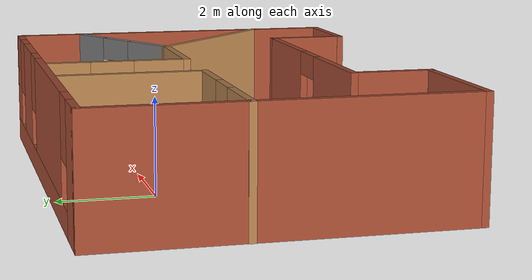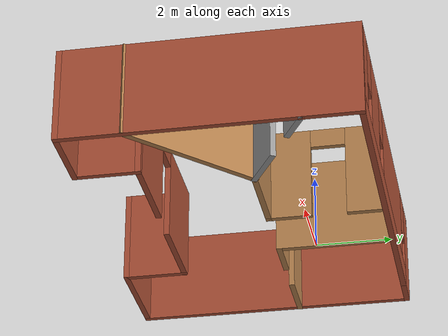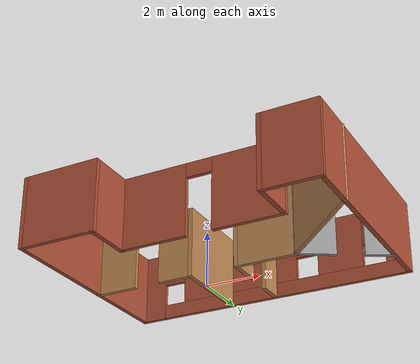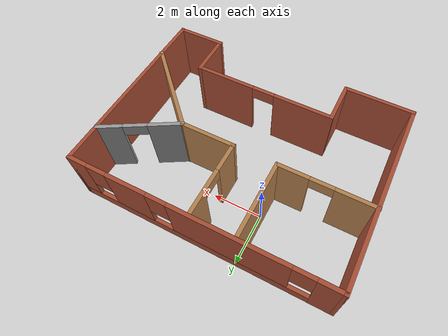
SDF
<?xml version='1.0'?>
<sdf version='1.7'>
  <model name='Building'>
    <pose>1.40233 -1.662 0 0 -0 0</pose>
    <link name='Wall_10'>
      <collision name='Wall_10_Collision'>
        <geometry>
          <box>
            <size>2.8 0.15 2.5</size>
          </box>
        </geometry>
        <pose>0 0 1.25 0 -0 0</pose>
      </collision>
      <visual name='Wall_10_Visual'>
        <pose>0 0 1.25 0 -0 0</pose>
        <geometry>
          <box>
            <size>2.8 0.15 2.5</size>
          </box>
        </geometry>
        <material>
          <script>
            <uri>file://media/materials/scripts/gazebo.material</uri>
            <name>Gazebo/Bricks</name>
          </script>
          <ambient>1 1 1 1</ambient>
        </material>
        <meta>
          <layer>0</layer>
        </meta>
      </visual>
      <pose>-3.73879 -3.675 0 0 -0 3.14159</pose>
    </link>
    <link name='Wall_12'>
      <pose>-3.27646 0.671731 0 0 -0 0</pose>
      <visual name='Wall_12_Visual_0'>
        <pose>-1.0918 0 1.25 0 -0 0</pose>
        <geometry>
          <box>
            <size>1.5664 0.15 2.5</size>
          </box>
        </geometry>
        <material>
          <script>
            <uri>file://media/materials/scripts/gazebo.material</uri>
            <name>Gazebo/Wood</name>
          </script>
          <ambient>1 1 1 1</ambient>
        </material>
        <meta>
          <layer>0</layer>
        </meta>
      </visual>
      <collision name='Wall_12_Collision_0'>
        <geometry>
          <box>
            <size>1.5664 0.15 2.5</size>
          </box>
        </geometry>
        <pose>-1.0918 0 1.25 0 -0 0</pose>
      </collision>
      <visual name='Wall_12_Visual_1'>
        <pose>1.2332 0 1.25 0 -0 0</pose>
        <geometry>
          <box>
            <size>1.2836 0.15 2.5</size>
          </box>
        </geometry>
        <material>
          <script>
            <uri>file://media/materials/scripts/gazebo.material</uri>
            <name>Gazebo/Wood</name>
          </script>
          <ambient>1 1 1 1</ambient>
        </material>
        <meta>
          <layer>0</layer>
        </meta>
      </visual>
      <collision name='Wall_12_Collision_1'>
        <geometry>
          <box>
            <size>1.2836 0.15 2.5</size>
          </box>
        </geometry>
        <pose>1.2332 0 1.25 0 -0 0</pose>
      </collision>
      <visual name='Wall_12_Visual_2'>
        <pose>0.141397 0 2.25 0 -0 0</pose>
        <geometry>
          <box>
            <size>0.9 0.15 0.5</size>
          </box>
        </geometry>
        <material>
          <script>
            <uri>file://media/materials/scripts/gazebo.material</uri>
            <name>Gazebo/Wood</name>
          </script>
          <ambient>1 1 1 1</ambient>
        </material>
        <meta>
          <layer>0</layer>
        </meta>
      </visual>
      <collision name='Wall_12_Collision_2'>
        <geometry>
          <box>
            <size>0.9 0.15 0.5</size>
          </box>
        </geometry>
        <pose>0.141397 0 2.25 0 -0 0</pose>
      </collision>
    </link>
    <link name='Wall_13'>
      <collision name='Wall_13_Collision'>
        <geometry>
          <box>
            <size>3 0.15 2.5</size>
          </box>
        </geometry>
        <pose>0 0 1.25 0 -0 0</pose>
      </collision>
      <visual name='Wall_13_Visual'>
        <pose>0 0 1.25 0 -0 0</pose>
        <geometry>
          <box>
            <size>3 0.15 2.5</size>
          </box>
        </geometry>
        <material>
          <script>
            <uri>file://media/materials/scripts/gazebo.material</uri>
            <name>Gazebo/Wood</name>
          </script>
          <ambient>1 1 1 1</ambient>
        </material>
        <meta>
          <layer>0</layer>
        </meta>
      </visual>
      <pose>-1.47646 2.09673 0 0 -0 1.5708</pose>
    </link>
    <link name='Wall_15'>
      <pose>0.223031 2.09673 0 0 -0 1.5708</pose>
      <visual name='Wall_15_Visual_0'>
        <pose>-0.900447 0 1.25 0 -0 0</pose>
        <geometry>
          <box>
            <size>1.19911 0.15 2.5</size>
          </box>
        </geometry>
        <material>
          <script>
            <uri>file://media/materials/scripts/gazebo.material</uri>
            <name>Gazebo/Wood</name>
          </script>
          <ambient>1 1 1 1</ambient>
        </material>
        <meta>
          <layer>0</layer>
        </meta>
      </visual>
      <collision name='Wall_15_Collision_0'>
        <geometry>
          <box>
            <size>1.19911 0.15 2.5</size>
          </box>
        </geometry>
        <pose>-0.900447 0 1.25 0 -0 0</pose>
      </collision>
      <visual name='Wall_15_Visual_1'>
        <pose>1.04955 0 1.25 0 -0 0</pose>
        <geometry>
          <box>
            <size>0.900894 0.15 2.5</size>
          </box>
        </geometry>
        <material>
          <script>
            <uri>file://media/materials/scripts/gazebo.material</uri>
            <name>Gazebo/Wood</name>
          </script>
          <ambient>1 1 1 1</ambient>
        </material>
        <meta>
          <layer>0</layer>
        </meta>
      </visual>
      <collision name='Wall_15_Collision_1'>
        <geometry>
          <box>
            <size>0.900894 0.15 2.5</size>
          </box>
        </geometry>
        <pose>1.04955 0 1.25 0 -0 0</pose>
      </collision>
      <visual name='Wall_15_Visual_2'>
        <pose>0.149106 0 2.25 0 -0 0</pose>
        <geometry>
          <box>
            <size>0.9 0.15 0.5</size>
          </box>
        </geometry>
        <material>
          <script>
            <uri>file://media/materials/scripts/gazebo.material</uri>
            <name>Gazebo/Wood</name>
          </script>
          <ambient>1 1 1 1</ambient>
        </material>
        <meta>
          <layer>0</layer>
        </meta>
      </visual>
      <collision name='Wall_15_Collision_2'>
        <geometry>
          <box>
            <size>0.9 0.15 0.5</size>
          </box>
        </geometry>
        <pose>0.149106 0 2.25 0 -0 0</pose>
      </collision>
    </link>
    <link name='Wall_17'>
      <collision name='Wall_17_Collision'>
        <geometry>
          <box>
            <size>2.25 0.15 2.5</size>
          </box>
        </geometry>
        <pose>0 0 1.25 0 -0 0</pose>
      </collision>
      <visual name='Wall_17_Visual'>
        <pose>0 0 1.25 0 -0 0</pose>
        <geometry>
          <box>
            <size>2.25 0.15 2.5</size>
          </box>
        </geometry>
        <material>
          <script>
            <uri>file://media/materials/scripts/gazebo.material</uri>
            <name>Gazebo/Wood</name>
          </script>
          <ambient>1 1 1 1</ambient>
        </material>
        <meta>
          <layer>0</layer>
        </meta>
      </visual>
      <pose>1.27303 0.671731 0 0 -0 0</pose>
    </link>
    <link name='Wall_18'>
      <collision name='Wall_18_Collision'>
        <geometry>
          <box>
            <size>4 0.15 2.5</size>
          </box>
        </geometry>
        <pose>0 0 1.25 0 -0 0</pose>
      </collision>
      <visual name='Wall_18_Visual'>
        <pose>0 0 1.25 0 -0 0</pose>
        <geometry>
          <box>
            <size>4 0.15 2.5</size>
          </box>
        </geometry>
        <material>
          <script>
            <uri>file://media/materials/scripts/gazebo.material</uri>
            <name>Gazebo/Wood</name>
          </script>
          <ambient>1 1 1 1</ambient>
        </material>
        <meta>
          <layer>0</layer>
        </meta>
      </visual>
      <pose>3.68421 -0.689449 0 0 -0 -0.785398</pose>
    </link>
    <link name='Wall_2'>
      <collision name='Wall_2_Collision'>
        <geometry>
          <box>
            <size>7.5 0.15 2.5</size>
          </box>
        </geometry>
        <pose>0 0 1.25 0 -0 0</pose>
      </collision>
      <visual name='Wall_2_Visual'>
        <pose>0 0 1.25 0 -0 0</pose>
        <geometry>
          <box>
            <size>7.5 0.15 2.5</size>
          </box>
        </geometry>
        <material>
          <script>
            <uri>file://media/materials/scripts/gazebo.material</uri>
            <name>Gazebo/Bricks</name>
          </script>
          <ambient>1 1 1 1</ambient>
        </material>
        <meta>
          <layer>0</layer>
        </meta>
      </visual>
      <pose>-5.06379 0 0 0 -0 1.5708</pose>
    </link>
    <link name='Wall_21'>
      <pose>3.66537 1.44673 0 0 -0 0.523599</pose>
      <visual name='Wall_21_Visual_0'>
        <pose>-0.947449 0 1.25 0 -0 0</pose>
        <geometry>
          <box>
            <size>1.3551 0.15 2.5</size>
          </box>
        </geometry>
        <material>
          <script>
            <uri>file://media/materials/scripts/gazebo.material</uri>
            <name>Gazebo/Grey</name>
          </script>
          <ambient>1 1 1 1</ambient>
        </material>
        <meta>
          <layer>0</layer>
        </meta>
      </visual>
      <collision name='Wall_21_Collision_0'>
        <geometry>
          <box>
            <size>1.3551 0.15 2.5</size>
          </box>
        </geometry>
        <pose>-0.947449 0 1.25 0 -0 0</pose>
      </collision>
      <visual name='Wall_21_Visual_1'>
        <pose>1.12755 0 1.25 0 -0 0</pose>
        <geometry>
          <box>
            <size>0.994898 0.15 2.5</size>
          </box>
        </geometry>
        <material>
          <script>
            <uri>file://media/materials/scripts/gazebo.material</uri>
            <name>Gazebo/Grey</name>
          </script>
          <ambient>1 1 1 1</ambient>
        </material>
        <meta>
          <layer>0</layer>
        </meta>
      </visual>
      <collision name='Wall_21_Collision_1'>
        <geometry>
          <box>
            <size>0.994898 0.15 2.5</size>
          </box>
        </geometry>
        <pose>1.12755 0 1.25 0 -0 0</pose>
      </collision>
      <visual name='Wall_21_Visual_2'>
        <pose>0.180102 0 2.25 0 -0 0</pose>
        <geometry>
          <box>
            <size>0.9 0.15 0.5</size>
          </box>
        </geometry>
        <material>
          <script>
            <uri>file://media/materials/scripts/gazebo.material</uri>
            <name>Gazebo/Grey</name>
          </script>
          <ambient>1 1 1 1</ambient>
        </material>
        <meta>
          <layer>0</layer>
        </meta>
      </visual>
      <collision name='Wall_21_Collision_2'>
        <geometry>
          <box>
            <size>0.9 0.15 0.5</size>
          </box>
        </geometry>
        <pose>0.180102 0 2.25 0 -0 0</pose>
      </collision>
    </link>
    <link name='Wall_4'>
      <pose>-0.013788 3.675 0 0 -0 0</pose>
      <visual name='Wall_4_Visual_0'>
        <pose>-4.6467 0 1.25 0 -0 0</pose>
        <geometry>
          <box>
            <size>0.956595 0.15 2.5</size>
          </box>
        </geometry>
        <material>
          <script>
            <uri>file://media/materials/scripts/gazebo.material</uri>
            <name>Gazebo/Bricks</name>
          </script>
          <ambient>1 1 1 1</ambient>
        </material>
        <meta>
          <layer>0</layer>
        </meta>
      </visual>
      <collision name='Wall_4_Collision_0'>
        <geometry>
          <box>
            <size>0.956595 0.15 2.5</size>
          </box>
        </geometry>
        <pose>-4.6467 0 1.25 0 -0 0</pose>
      </collision>
      <visual name='Wall_4_Visual_1'>
        <pose>0.478297 0 0.25 0 -0 0</pose>
        <geometry>
          <box>
            <size>9.2934 0.15 0.5</size>
          </box>
        </geometry>
        <material>
          <script>
            <uri>file://media/materials/scripts/gazebo.material</uri>
            <name>Gazebo/Bricks</name>
          </script>
          <ambient>1 1 1 1</ambient>
        </material>
        <meta>
          <layer>0</layer>
        </meta>
      </visual>
      <collision name='Wall_4_Collision_1'>
        <geometry>
          <box>
            <size>9.2934 0.15 0.5</size>
          </box>
        </geometry>
        <pose>0.478297 0 0.25 0 -0 0</pose>
      </collision>
      <visual name='Wall_4_Visual_2'>
        <pose>-1.1449 0 1.5 0 -0 0</pose>
        <geometry>
          <box>
            <size>4.44702 0.15 2</size>
          </box>
        </geometry>
        <material>
          <script>
            <uri>file://media/materials/scripts/gazebo.material</uri>
            <name>Gazebo/Bricks</name>
          </script>
          <ambient>1 1 1 1</ambient>
        </material>
        <meta>
          <layer>0</layer>
        </meta>
      </visual>
      <collision name='Wall_4_Collision_2'>
        <geometry>
          <box>
            <size>4.44702 0.15 2</size>
          </box>
        </geometry>
        <pose>-1.1449 0 1.5 0 -0 0</pose>
      </collision>
      <visual name='Wall_4_Visual_3'>
        <pose>2.69417 0 1.5 0 -0 0</pose>
        <geometry>
          <box>
            <size>1.63112 0.15 2</size>
          </box>
        </geometry>
        <material>
          <script>
            <uri>file://media/materials/scripts/gazebo.material</uri>
            <name>Gazebo/Bricks</name>
          </script>
          <ambient>1 1 1 1</ambient>
        </material>
        <meta>
          <layer>0</layer>
        </meta>
      </visual>
      <collision name='Wall_4_Collision_3'>
        <geometry>
          <box>
            <size>1.63112 0.15 2</size>
          </box>
        </geometry>
        <pose>2.69417 0 1.5 0 -0 0</pose>
      </collision>
      <visual name='Wall_4_Visual_4'>
        <pose>4.71737 0 1.5 0 -0 0</pose>
        <geometry>
          <box>
            <size>0.815268 0.15 2</size>
          </box>
        </geometry>
        <material>
          <script>
            <uri>file://media/materials/scripts/gazebo.material</uri>
            <name>Gazebo/Bricks</name>
          </script>
          <ambient>1 1 1 1</ambient>
        </material>
        <meta>
          <layer>0</layer>
        </meta>
      </visual>
      <collision name='Wall_4_Collision_4'>
        <geometry>
          <box>
            <size>0.815268 0.15 2</size>
          </box>
        </geometry>
        <pose>4.71737 0 1.5 0 -0 0</pose>
      </collision>
      <visual name='Wall_4_Visual_5'>
        <pose>-3.76841 0 1.9 0 -0 0</pose>
        <geometry>
          <box>
            <size>0.8 0.15 1.2</size>
          </box>
        </geometry>
        <material>
          <script>
            <uri>file://media/materials/scripts/gazebo.material</uri>
            <name>Gazebo/Bricks</name>
          </script>
          <ambient>1 1 1 1</ambient>
        </material>
        <meta>
          <layer>0</layer>
        </meta>
      </visual>
      <collision name='Wall_4_Collision_5'>
        <geometry>
          <box>
            <size>0.8 0.15 1.2</size>
          </box>
        </geometry>
        <pose>-3.76841 0 1.9 0 -0 0</pose>
      </collision>
      <visual name='Wall_4_Visual_6'>
        <pose>1.47861 0 1.9 0 -0 0</pose>
        <geometry>
          <box>
            <size>0.8 0.15 1.2</size>
          </box>
        </geometry>
        <material>
          <script>
            <uri>file://media/materials/scripts/gazebo.material</uri>
            <name>Gazebo/Bricks</name>
          </script>
          <ambient>1 1 1 1</ambient>
        </material>
        <meta>
          <layer>0</layer>
        </meta>
      </visual>
      <collision name='Wall_4_Collision_6'>
        <geometry>
          <box>
            <size>0.8 0.15 1.2</size>
          </box>
        </geometry>
        <pose>1.47861 0 1.9 0 -0 0</pose>
      </collision>
      <visual name='Wall_4_Visual_7'>
        <pose>3.90973 0 1.9 0 -0 0</pose>
        <geometry>
          <box>
            <size>0.8 0.15 1.2</size>
          </box>
        </geometry>
        <material>
          <script>
            <uri>file://media/materials/scripts/gazebo.material</uri>
            <name>Gazebo/Bricks</name>
          </script>
          <ambient>1 1 1 1</ambient>
        </material>
        <meta>
          <layer>0</layer>
        </meta>
      </visual>
      <collision name='Wall_4_Collision_7'>
        <geometry>
          <box>
            <size>0.8 0.15 1.2</size>
          </box>
        </geometry>
        <pose>3.90973 0 1.9 0 -0 0</pose>
      </collision>
    </link>
    <link name='Wall_5'>
      <collision name='Wall_5_Collision'>
        <geometry>
          <box>
            <size>7.5 0.15 2.5</size>
          </box>
        </geometry>
        <pose>0 0 1.25 0 -0 0</pose>
      </collision>
      <visual name='Wall_5_Visual'>
        <pose>0 0 1.25 0 -0 0</pose>
        <geometry>
          <box>
            <size>7.5 0.15 2.5</size>
          </box>
        </geometry>
        <material>
          <script>
            <uri>file://media/materials/scripts/gazebo.material</uri>
            <name>Gazebo/Bricks</name>
          </script>
          <ambient>1 1 1 1</ambient>
        </material>
        <meta>
          <layer>0</layer>
        </meta>
      </visual>
      <pose>5.03621 0 0 0 -0 -1.5708</pose>
    </link>
    <link name='Wall_6'>
      <collision name='Wall_6_Collision'>
        <geometry>
          <box>
            <size>2 0.15 2.5</size>
          </box>
        </geometry>
        <pose>0 0 1.25 0 -0 0</pose>
      </collision>
      <visual name='Wall_6_Visual'>
        <pose>0 0 1.25 0 -0 0</pose>
        <geometry>
          <box>
            <size>2 0.15 2.5</size>
          </box>
        </geometry>
        <material>
          <script>
            <uri>file://media/materials/scripts/gazebo.material</uri>
            <name>Gazebo/Bricks</name>
          </script>
          <ambient>1 1 1 1</ambient>
        </material>
        <meta>
          <layer>0</layer>
        </meta>
      </visual>
      <pose>4.11121 -3.675 0 0 -0 3.14159</pose>
    </link>
    <link name='Wall_7'>
      <collision name='Wall_7_Collision'>
        <geometry>
          <box>
            <size>1.75 0.15 2.5</size>
          </box>
        </geometry>
        <pose>0 0 1.25 0 -0 0</pose>
      </collision>
      <visual name='Wall_7_Visual'>
        <pose>0 0 1.25 0 -0 0</pose>
        <geometry>
          <box>
            <size>1.75 0.15 2.5</size>
          </box>
        </geometry>
        <material>
          <script>
            <uri>file://media/materials/scripts/gazebo.material</uri>
            <name>Gazebo/Bricks</name>
          </script>
          <ambient>1 1 1 1</ambient>
        </material>
        <meta>
          <layer>0</layer>
        </meta>
      </visual>
      <pose>3.18621 -2.875 0 0 -0 1.5708</pose>
    </link>
    <link name='Wall_8'>
      <pose>0.386212 -2.075 0 0 -0 3.14159</pose>
      <visual name='Wall_8_Visual_0'>
        <pose>-1.65087 0 1.25 0 -0 0</pose>
        <geometry>
          <box>
            <size>2.44826 0.15 2.5</size>
          </box>
        </geometry>
        <material>
          <script>
            <uri>file://media/materials/scripts/gazebo.material</uri>
            <name>Gazebo/Bricks</name>
          </script>
          <ambient>1 1 1 1</ambient>
        </material>
        <meta>
          <layer>0</layer>
        </meta>
      </visual>
      <collision name='Wall_8_Collision_0'>
        <geometry>
          <box>
            <size>2.44826 0.15 2.5</size>
          </box>
        </geometry>
        <pose>-1.65087 0 1.25 0 -0 0</pose>
      </collision>
      <visual name='Wall_8_Visual_1'>
        <pose>1.67413 0 1.25 0 -0 0</pose>
        <geometry>
          <box>
            <size>2.40174 0.15 2.5</size>
          </box>
        </geometry>
        <material>
          <script>
            <uri>file://media/materials/scripts/gazebo.material</uri>
            <name>Gazebo/Bricks</name>
          </script>
          <ambient>1 1 1 1</ambient>
        </material>
        <meta>
          <layer>0</layer>
        </meta>
      </visual>
      <collision name='Wall_8_Collision_1'>
        <geometry>
          <box>
            <size>2.40174 0.15 2.5</size>
          </box>
        </geometry>
        <pose>1.67413 0 1.25 0 -0 0</pose>
      </collision>
      <visual name='Wall_8_Visual_2'>
        <pose>0.02326 0 2.25 0 -0 0</pose>
        <geometry>
          <box>
            <size>0.9 0.15 0.5</size>
          </box>
        </geometry>
        <material>
          <script>
            <uri>file://media/materials/scripts/gazebo.material</uri>
            <name>Gazebo/Bricks</name>
          </script>
          <ambient>1 1 1 1</ambient>
        </material>
        <meta>
          <layer>0</layer>
        </meta>
      </visual>
      <collision name='Wall_8_Collision_2'>
        <geometry>
          <box>
            <size>0.9 0.15 0.5</size>
          </box>
        </geometry>
        <pose>0.02326 0 2.25 0 -0 0</pose>
      </collision>
    </link>
    <link name='Wall_9'>
      <collision name='Wall_9_Collision'>
        <geometry>
          <box>
            <size>1.75 0.15 2.5</size>
          </box>
        </geometry>
        <pose>0 0 1.25 0 -0 0</pose>
      </collision>
      <visual name='Wall_9_Visual'>
        <pose>0 0 1.25 0 -0 0</pose>
        <geometry>
          <box>
            <size>1.75 0.15 2.5</size>
          </box>
        </geometry>
        <material>
          <script>
            <uri>file://media/materials/scripts/gazebo.material</uri>
            <name>Gazebo/Bricks</name>
          </script>
          <ambient>1 1 1 1</ambient>
        </material>
        <meta>
          <layer>0</layer>
        </meta>
      </visual>
      <pose>-2.41379 -2.875 0 0 -0 -1.5708</pose>
    </link>
    <static>1</static>
  </model>
</sdf>
